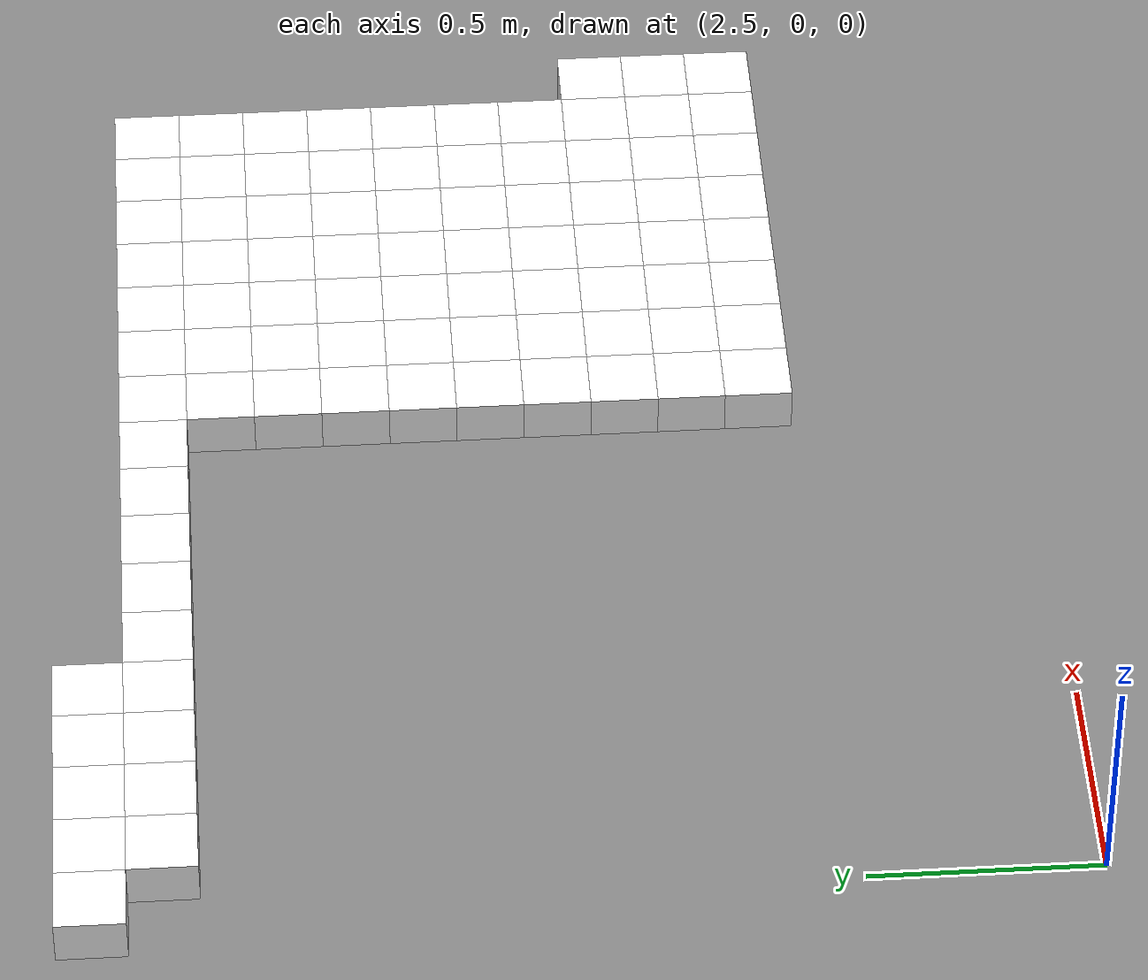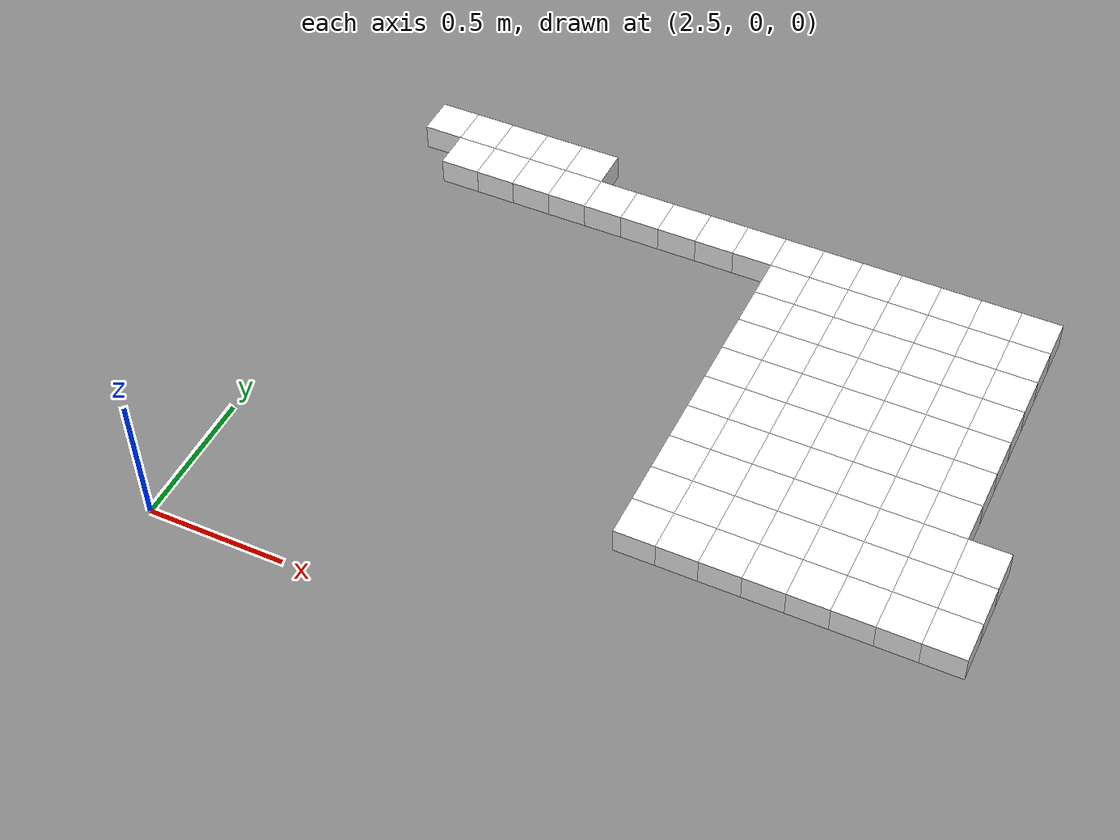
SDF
<sdf version="1.7">
 <world name="default">
  <include><uri>model://sun</uri></include>
  <model name="static_environment">
   <static>true</static>
   <link name="region_411">
    <pose>2.6500000000000012 1.9499999999999997 0.0 0.0 0.0 0.0</pose>
    <collision name="region_411_collision">
     <geometry><box><size>0.15 0.15 0.1</size></box></geometry>
     <surface><friction><ode><mu>1.0</mu><mu2>1.0</mu2></ode></friction></surface>
    </collision>
    <visual name="region_411_visual">
     <geometry><box><size>0.15 0.15 0.1</size></box></geometry>
     <material><ambient>1.0 1.0 1.0 1.0</ambient><diffuse>1.0 1.0 1.0 1.0</diffuse></material>
    </visual>
   </link>
   <link name="region_412">
    <pose>2.8000000000000016 1.9499999999999997 0.0 0.0 0.0 0.0</pose>
    <collision name="region_412_collision">
     <geometry><box><size>0.15 0.15 0.1</size></box></geometry>
     <surface><friction><ode><mu>1.0</mu><mu2>1.0</mu2></ode></friction></surface>
    </collision>
    <visual name="region_412_visual">
     <geometry><box><size>0.15 0.15 0.1</size></box></geometry>
     <material><ambient>1.0 1.0 1.0 1.0</ambient><diffuse>1.0 1.0 1.0 1.0</diffuse></material>
    </visual>
   </link>
   <link name="region_413">
    <pose>2.950000000000002 1.9499999999999997 0.0 0.0 0.0 0.0</pose>
    <collision name="region_413_collision">
     <geometry><box><size>0.15 0.15 0.1</size></box></geometry>
     <surface><friction><ode><mu>1.0</mu><mu2>1.0</mu2></ode></friction></surface>
    </collision>
    <visual name="region_413_visual">
     <geometry><box><size>0.15 0.15 0.1</size></box></geometry>
     <material><ambient>1.0 1.0 1.0 1.0</ambient><diffuse>1.0 1.0 1.0 1.0</diffuse></material>
    </visual>
   </link>
   <link name="region_414">
    <pose>3.1000000000000023 1.9499999999999997 0.0 0.0 0.0 0.0</pose>
    <collision name="region_414_collision">
     <geometry><box><size>0.15 0.15 0.1</size></box></geometry>
     <surface><friction><ode><mu>1.0</mu><mu2>1.0</mu2></ode></friction></surface>
    </collision>
    <visual name="region_414_visual">
     <geometry><box><size>0.15 0.15 0.1</size></box></geometry>
     <material><ambient>1.0 1.0 1.0 1.0</ambient><diffuse>1.0 1.0 1.0 1.0</diffuse></material>
    </visual>
   </link>
   <link name="region_415">
    <pose>3.2500000000000027 1.9499999999999997 0.0 0.0 0.0 0.0</pose>
    <collision name="region_415_collision">
     <geometry><box><size>0.15 0.15 0.1</size></box></geometry>
     <surface><friction><ode><mu>1.0</mu><mu2>1.0</mu2></ode></friction></surface>
    </collision>
    <visual name="region_415_visual">
     <geometry><box><size>0.15 0.15 0.1</size></box></geometry>
     <material><ambient>1.0 1.0 1.0 1.0</ambient><diffuse>1.0 1.0 1.0 1.0</diffuse></material>
    </visual>
   </link>
   <link name="region_416">
    <pose>3.400000000000003 1.9499999999999997 0.0 0.0 0.0 0.0</pose>
    <collision name="region_416_collision">
     <geometry><box><size>0.15 0.15 0.1</size></box></geometry>
     <surface><friction><ode><mu>1.0</mu><mu2>1.0</mu2></ode></friction></surface>
    </collision>
    <visual name="region_416_visual">
     <geometry><box><size>0.15 0.15 0.1</size></box></geometry>
     <material><ambient>1.0 1.0 1.0 1.0</ambient><diffuse>1.0 1.0 1.0 1.0</diffuse></material>
    </visual>
   </link>
   <link name="region_417">
    <pose>3.5500000000000034 1.9499999999999997 0.0 0.0 0.0 0.0</pose>
    <collision name="region_417_collision">
     <geometry><box><size>0.15 0.15 0.1</size></box></geometry>
     <surface><friction><ode><mu>1.0</mu><mu2>1.0</mu2></ode></friction></surface>
    </collision>
    <visual name="region_417_visual">
     <geometry><box><size>0.15 0.15 0.1</size></box></geometry>
     <material><ambient>1.0 1.0 1.0 1.0</ambient><diffuse>1.0 1.0 1.0 1.0</diffuse></material>
    </visual>
   </link>
   <link name="region_418">
    <pose>3.7000000000000037 1.9499999999999997 0.0 0.0 0.0 0.0</pose>
    <collision name="region_418_collision">
     <geometry><box><size>0.15 0.15 0.1</size></box></geometry>
     <surface><friction><ode><mu>1.0</mu><mu2>1.0</mu2></ode></friction></surface>
    </collision>
    <visual name="region_418_visual">
     <geometry><box><size>0.15 0.15 0.1</size></box></geometry>
     <material><ambient>1.0 1.0 1.0 1.0</ambient><diffuse>1.0 1.0 1.0 1.0</diffuse></material>
    </visual>
   </link>
   <link name="region_419">
    <pose>3.850000000000004 1.9499999999999997 0.0 0.0 0.0 0.0</pose>
    <collision name="region_419_collision">
     <geometry><box><size>0.15 0.15 0.1</size></box></geometry>
     <surface><friction><ode><mu>1.0</mu><mu2>1.0</mu2></ode></friction></surface>
    </collision>
    <visual name="region_419_visual">
     <geometry><box><size>0.15 0.15 0.1</size></box></geometry>
     <material><ambient>1.0 1.0 1.0 1.0</ambient><diffuse>1.0 1.0 1.0 1.0</diffuse></material>
    </visual>
   </link>
   <link name="region_430">
    <pose>2.500000000000001 2.0999999999999996 0.0 0.0 0.0 0.0</pose>
    <collision name="region_430_collision">
     <geometry><box><size>0.15 0.15 0.1</size></box></geometry>
     <surface><friction><ode><mu>1.0</mu><mu2>1.0</mu2></ode></friction></surface>
    </collision>
    <visual name="region_430_visual">
     <geometry><box><size>0.15 0.15 0.1</size></box></geometry>
     <material><ambient>1.0 1.0 1.0 1.0</ambient><diffuse>1.0 1.0 1.0 1.0</diffuse></material>
    </visual>
   </link>
   <link name="region_431">
    <pose>2.6500000000000012 2.0999999999999996 0.0 0.0 0.0 0.0</pose>
    <collision name="region_431_collision">
     <geometry><box><size>0.15 0.15 0.1</size></box></geometry>
     <surface><friction><ode><mu>1.0</mu><mu2>1.0</mu2></ode></friction></surface>
    </collision>
    <visual name="region_431_visual">
     <geometry><box><size>0.15 0.15 0.1</size></box></geometry>
     <material><ambient>1.0 1.0 1.0 1.0</ambient><diffuse>1.0 1.0 1.0 1.0</diffuse></material>
    </visual>
   </link>
   <link name="region_432">
    <pose>2.8000000000000016 2.0999999999999996 0.0 0.0 0.0 0.0</pose>
    <collision name="region_432_collision">
     <geometry><box><size>0.15 0.15 0.1</size></box></geometry>
     <surface><friction><ode><mu>1.0</mu><mu2>1.0</mu2></ode></friction></surface>
    </collision>
    <visual name="region_432_visual">
     <geometry><box><size>0.15 0.15 0.1</size></box></geometry>
     <material><ambient>1.0 1.0 1.0 1.0</ambient><diffuse>1.0 1.0 1.0 1.0</diffuse></material>
    </visual>
   </link>
   <link name="region_433">
    <pose>2.950000000000002 2.0999999999999996 0.0 0.0 0.0 0.0</pose>
    <collision name="region_433_collision">
     <geometry><box><size>0.15 0.15 0.1</size></box></geometry>
     <surface><friction><ode><mu>1.0</mu><mu2>1.0</mu2></ode></friction></surface>
    </collision>
    <visual name="region_433_visual">
     <geometry><box><size>0.15 0.15 0.1</size></box></geometry>
     <material><ambient>1.0 1.0 1.0 1.0</ambient><diffuse>1.0 1.0 1.0 1.0</diffuse></material>
    </visual>
   </link>
   <link name="region_434">
    <pose>3.1000000000000023 2.0999999999999996 0.0 0.0 0.0 0.0</pose>
    <collision name="region_434_collision">
     <geometry><box><size>0.15 0.15 0.1</size></box></geometry>
     <surface><friction><ode><mu>1.0</mu><mu2>1.0</mu2></ode></friction></surface>
    </collision>
    <visual name="region_434_visual">
     <geometry><box><size>0.15 0.15 0.1</size></box></geometry>
     <material><ambient>1.0 1.0 1.0 1.0</ambient><diffuse>1.0 1.0 1.0 1.0</diffuse></material>
    </visual>
   </link>
   <link name="region_460">
    <pose>4.0 0.6 0.0 0.0 0.0 0.0</pose>
    <collision name="region_460_collision">
     <geometry><box><size>0.15 0.15 0.1</size></box></geometry>
     <surface><friction><ode><mu>1.0</mu><mu2>1.0</mu2></ode></friction></surface>
    </collision>
    <visual name="region_460_visual">
     <geometry><box><size>0.15 0.15 0.1</size></box></geometry>
     <material><ambient>1.0 1.0 1.0 1.0</ambient><diffuse>1.0 1.0 1.0 1.0</diffuse></material>
    </visual>
   </link>
   <link name="region_461">
    <pose>4.15 0.6 0.0 0.0 0.0 0.0</pose>
    <collision name="region_461_collision">
     <geometry><box><size>0.15 0.15 0.1</size></box></geometry>
     <surface><friction><ode><mu>1.0</mu><mu2>1.0</mu2></ode></friction></surface>
    </collision>
    <visual name="region_461_visual">
     <geometry><box><size>0.15 0.15 0.1</size></box></geometry>
     <material><ambient>1.0 1.0 1.0 1.0</ambient><diffuse>1.0 1.0 1.0 1.0</diffuse></material>
    </visual>
   </link>
   <link name="region_462">
    <pose>4.300000000000001 0.6 0.0 0.0 0.0 0.0</pose>
    <collision name="region_462_collision">
     <geometry><box><size>0.15 0.15 0.1</size></box></geometry>
     <surface><friction><ode><mu>1.0</mu><mu2>1.0</mu2></ode></friction></surface>
    </collision>
    <visual name="region_462_visual">
     <geometry><box><size>0.15 0.15 0.1</size></box></geometry>
     <material><ambient>1.0 1.0 1.0 1.0</ambient><diffuse>1.0 1.0 1.0 1.0</diffuse></material>
    </visual>
   </link>
   <link name="region_463">
    <pose>4.450000000000001 0.6 0.0 0.0 0.0 0.0</pose>
    <collision name="region_463_collision">
     <geometry><box><size>0.15 0.15 0.1</size></box></geometry>
     <surface><friction><ode><mu>1.0</mu><mu2>1.0</mu2></ode></friction></surface>
    </collision>
    <visual name="region_463_visual">
     <geometry><box><size>0.15 0.15 0.1</size></box></geometry>
     <material><ambient>1.0 1.0 1.0 1.0</ambient><diffuse>1.0 1.0 1.0 1.0</diffuse></material>
    </visual>
   </link>
   <link name="region_464">
    <pose>4.600000000000001 0.6 0.0 0.0 0.0 0.0</pose>
    <collision name="region_464_collision">
     <geometry><box><size>0.15 0.15 0.1</size></box></geometry>
     <surface><friction><ode><mu>1.0</mu><mu2>1.0</mu2></ode></friction></surface>
    </collision>
    <visual name="region_464_visual">
     <geometry><box><size>0.15 0.15 0.1</size></box></geometry>
     <material><ambient>1.0 1.0 1.0 1.0</ambient><diffuse>1.0 1.0 1.0 1.0</diffuse></material>
    </visual>
   </link>
   <link name="region_465">
    <pose>4.750000000000002 0.6 0.0 0.0 0.0 0.0</pose>
    <collision name="region_465_collision">
     <geometry><box><size>0.15 0.15 0.1</size></box></geometry>
     <surface><friction><ode><mu>1.0</mu><mu2>1.0</mu2></ode></friction></surface>
    </collision>
    <visual name="region_465_visual">
     <geometry><box><size>0.15 0.15 0.1</size></box></geometry>
     <material><ambient>1.0 1.0 1.0 1.0</ambient><diffuse>1.0 1.0 1.0 1.0</diffuse></material>
    </visual>
   </link>
   <link name="region_466">
    <pose>4.900000000000002 0.6 0.0 0.0 0.0 0.0</pose>
    <collision name="region_466_collision">
     <geometry><box><size>0.15 0.15 0.1</size></box></geometry>
     <surface><friction><ode><mu>1.0</mu><mu2>1.0</mu2></ode></friction></surface>
    </collision>
    <visual name="region_466_visual">
     <geometry><box><size>0.15 0.15 0.1</size></box></geometry>
     <material><ambient>1.0 1.0 1.0 1.0</ambient><diffuse>1.0 1.0 1.0 1.0</diffuse></material>
    </visual>
   </link>
   <link name="region_467">
    <pose>5.0500000000000025 0.6 0.0 0.0 0.0 0.0</pose>
    <collision name="region_467_collision">
     <geometry><box><size>0.15 0.15 0.1</size></box></geometry>
     <surface><friction><ode><mu>1.0</mu><mu2>1.0</mu2></ode></friction></surface>
    </collision>
    <visual name="region_467_visual">
     <geometry><box><size>0.15 0.15 0.1</size></box></geometry>
     <material><ambient>1.0 1.0 1.0 1.0</ambient><diffuse>1.0 1.0 1.0 1.0</diffuse></material>
    </visual>
   </link>
   <link name="region_480">
    <pose>4.0 0.75 0.0 0.0 0.0 0.0</pose>
    <collision name="region_480_collision">
     <geometry><box><size>0.15 0.15 0.1</size></box></geometry>
     <surface><friction><ode><mu>1.0</mu><mu2>1.0</mu2></ode></friction></surface>
    </collision>
    <visual name="region_480_visual">
     <geometry><box><size>0.15 0.15 0.1</size></box></geometry>
     <material><ambient>1.0 1.0 1.0 1.0</ambient><diffuse>1.0 1.0 1.0 1.0</diffuse></material>
    </visual>
   </link>
   <link name="region_481">
    <pose>4.15 0.75 0.0 0.0 0.0 0.0</pose>
    <collision name="region_481_collision">
     <geometry><box><size>0.15 0.15 0.1</size></box></geometry>
     <surface><friction><ode><mu>1.0</mu><mu2>1.0</mu2></ode></friction></surface>
    </collision>
    <visual name="region_481_visual">
     <geometry><box><size>0.15 0.15 0.1</size></box></geometry>
     <material><ambient>1.0 1.0 1.0 1.0</ambient><diffuse>1.0 1.0 1.0 1.0</diffuse></material>
    </visual>
   </link>
   <link name="region_482">
    <pose>4.300000000000001 0.75 0.0 0.0 0.0 0.0</pose>
    <collision name="region_482_collision">
     <geometry><box><size>0.15 0.15 0.1</size></box></geometry>
     <surface><friction><ode><mu>1.0</mu><mu2>1.0</mu2></ode></friction></surface>
    </collision>
    <visual name="region_482_visual">
     <geometry><box><size>0.15 0.15 0.1</size></box></geometry>
     <material><ambient>1.0 1.0 1.0 1.0</ambient><diffuse>1.0 1.0 1.0 1.0</diffuse></material>
    </visual>
   </link>
   <link name="region_483">
    <pose>4.450000000000001 0.75 0.0 0.0 0.0 0.0</pose>
    <collision name="region_483_collision">
     <geometry><box><size>0.15 0.15 0.1</size></box></geometry>
     <surface><friction><ode><mu>1.0</mu><mu2>1.0</mu2></ode></friction></surface>
    </collision>
    <visual name="region_483_visual">
     <geometry><box><size>0.15 0.15 0.1</size></box></geometry>
     <material><ambient>1.0 1.0 1.0 1.0</ambient><diffuse>1.0 1.0 1.0 1.0</diffuse></material>
    </visual>
   </link>
   <link name="region_484">
    <pose>4.600000000000001 0.75 0.0 0.0 0.0 0.0</pose>
    <collision name="region_484_collision">
     <geometry><box><size>0.15 0.15 0.1</size></box></geometry>
     <surface><friction><ode><mu>1.0</mu><mu2>1.0</mu2></ode></friction></surface>
    </collision>
    <visual name="region_484_visual">
     <geometry><box><size>0.15 0.15 0.1</size></box></geometry>
     <material><ambient>1.0 1.0 1.0 1.0</ambient><diffuse>1.0 1.0 1.0 1.0</diffuse></material>
    </visual>
   </link>
   <link name="region_485">
    <pose>4.750000000000002 0.75 0.0 0.0 0.0 0.0</pose>
    <collision name="region_485_collision">
     <geometry><box><size>0.15 0.15 0.1</size></box></geometry>
     <surface><friction><ode><mu>1.0</mu><mu2>1.0</mu2></ode></friction></surface>
    </collision>
    <visual name="region_485_visual">
     <geometry><box><size>0.15 0.15 0.1</size></box></geometry>
     <material><ambient>1.0 1.0 1.0 1.0</ambient><diffuse>1.0 1.0 1.0 1.0</diffuse></material>
    </visual>
   </link>
   <link name="region_486">
    <pose>4.900000000000002 0.75 0.0 0.0 0.0 0.0</pose>
    <collision name="region_486_collision">
     <geometry><box><size>0.15 0.15 0.1</size></box></geometry>
     <surface><friction><ode><mu>1.0</mu><mu2>1.0</mu2></ode></friction></surface>
    </collision>
    <visual name="region_486_visual">
     <geometry><box><size>0.15 0.15 0.1</size></box></geometry>
     <material><ambient>1.0 1.0 1.0 1.0</ambient><diffuse>1.0 1.0 1.0 1.0</diffuse></material>
    </visual>
   </link>
   <link name="region_487">
    <pose>5.0500000000000025 0.75 0.0 0.0 0.0 0.0</pose>
    <collision name="region_487_collision">
     <geometry><box><size>0.15 0.15 0.1</size></box></geometry>
     <surface><friction><ode><mu>1.0</mu><mu2>1.0</mu2></ode></friction></surface>
    </collision>
    <visual name="region_487_visual">
     <geometry><box><size>0.15 0.15 0.1</size></box></geometry>
     <material><ambient>1.0 1.0 1.0 1.0</ambient><diffuse>1.0 1.0 1.0 1.0</diffuse></material>
    </visual>
   </link>
   <link name="region_500">
    <pose>4.0 0.8999999999999999 0.0 0.0 0.0 0.0</pose>
    <collision name="region_500_collision">
     <geometry><box><size>0.15 0.15 0.1</size></box></geometry>
     <surface><friction><ode><mu>1.0</mu><mu2>1.0</mu2></ode></friction></surface>
    </collision>
    <visual name="region_500_visual">
     <geometry><box><size>0.15 0.15 0.1</size></box></geometry>
     <material><ambient>1.0 1.0 1.0 1.0</ambient><diffuse>1.0 1.0 1.0 1.0</diffuse></material>
    </visual>
   </link>
   <link name="region_501">
    <pose>4.15 0.8999999999999999 0.0 0.0 0.0 0.0</pose>
    <collision name="region_501_collision">
     <geometry><box><size>0.15 0.15 0.1</size></box></geometry>
     <surface><friction><ode><mu>1.0</mu><mu2>1.0</mu2></ode></friction></surface>
    </collision>
    <visual name="region_501_visual">
     <geometry><box><size>0.15 0.15 0.1</size></box></geometry>
     <material><ambient>1.0 1.0 1.0 1.0</ambient><diffuse>1.0 1.0 1.0 1.0</diffuse></material>
    </visual>
   </link>
   <link name="region_502">
    <pose>4.300000000000001 0.8999999999999999 0.0 0.0 0.0 0.0</pose>
    <collision name="region_502_collision">
     <geometry><box><size>0.15 0.15 0.1</size></box></geometry>
     <surface><friction><ode><mu>1.0</mu><mu2>1.0</mu2></ode></friction></surface>
    </collision>
    <visual name="region_502_visual">
     <geometry><box><size>0.15 0.15 0.1</size></box></geometry>
     <material><ambient>1.0 1.0 1.0 1.0</ambient><diffuse>1.0 1.0 1.0 1.0</diffuse></material>
    </visual>
   </link>
   <link name="region_503">
    <pose>4.450000000000001 0.8999999999999999 0.0 0.0 0.0 0.0</pose>
    <collision name="region_503_collision">
     <geometry><box><size>0.15 0.15 0.1</size></box></geometry>
     <surface><friction><ode><mu>1.0</mu><mu2>1.0</mu2></ode></friction></surface>
    </collision>
    <visual name="region_503_visual">
     <geometry><box><size>0.15 0.15 0.1</size></box></geometry>
     <material><ambient>1.0 1.0 1.0 1.0</ambient><diffuse>1.0 1.0 1.0 1.0</diffuse></material>
    </visual>
   </link>
   <link name="region_504">
    <pose>4.600000000000001 0.8999999999999999 0.0 0.0 0.0 0.0</pose>
    <collision name="region_504_collision">
     <geometry><box><size>0.15 0.15 0.1</size></box></geometry>
     <surface><friction><ode><mu>1.0</mu><mu2>1.0</mu2></ode></friction></surface>
    </collision>
    <visual name="region_504_visual">
     <geometry><box><size>0.15 0.15 0.1</size></box></geometry>
     <material><ambient>1.0 1.0 1.0 1.0</ambient><diffuse>1.0 1.0 1.0 1.0</diffuse></material>
    </visual>
   </link>
   <link name="region_505">
    <pose>4.750000000000002 0.8999999999999999 0.0 0.0 0.0 0.0</pose>
    <collision name="region_505_collision">
     <geometry><box><size>0.15 0.15 0.1</size></box></geometry>
     <surface><friction><ode><mu>1.0</mu><mu2>1.0</mu2></ode></friction></surface>
    </collision>
    <visual name="region_505_visual">
     <geometry><box><size>0.15 0.15 0.1</size></box></geometry>
     <material><ambient>1.0 1.0 1.0 1.0</ambient><diffuse>1.0 1.0 1.0 1.0</diffuse></material>
    </visual>
   </link>
   <link name="region_506">
    <pose>4.900000000000002 0.8999999999999999 0.0 0.0 0.0 0.0</pose>
    <collision name="region_506_collision">
     <geometry><box><size>0.15 0.15 0.1</size></box></geometry>
     <surface><friction><ode><mu>1.0</mu><mu2>1.0</mu2></ode></friction></surface>
    </collision>
    <visual name="region_506_visual">
     <geometry><box><size>0.15 0.15 0.1</size></box></geometry>
     <material><ambient>1.0 1.0 1.0 1.0</ambient><diffuse>1.0 1.0 1.0 1.0</diffuse></material>
    </visual>
   </link>
   <link name="region_507">
    <pose>5.0500000000000025 0.8999999999999999 0.0 0.0 0.0 0.0</pose>
    <collision name="region_507_collision">
     <geometry><box><size>0.15 0.15 0.1</size></box></geometry>
     <surface><friction><ode><mu>1.0</mu><mu2>1.0</mu2></ode></friction></surface>
    </collision>
    <visual name="region_507_visual">
     <geometry><box><size>0.15 0.15 0.1</size></box></geometry>
     <material><ambient>1.0 1.0 1.0 1.0</ambient><diffuse>1.0 1.0 1.0 1.0</diffuse></material>
    </visual>
   </link>
   <link name="region_520">
    <pose>4.0 1.0499999999999998 0.0 0.0 0.0 0.0</pose>
    <collision name="region_520_collision">
     <geometry><box><size>0.15 0.15 0.1</size></box></geometry>
     <surface><friction><ode><mu>1.0</mu><mu2>1.0</mu2></ode></friction></surface>
    </collision>
    <visual name="region_520_visual">
     <geometry><box><size>0.15 0.15 0.1</size></box></geometry>
     <material><ambient>1.0 1.0 1.0 1.0</ambient><diffuse>1.0 1.0 1.0 1.0</diffuse></material>
    </visual>
   </link>
   <link name="region_521">
    <pose>4.15 1.0499999999999998 0.0 0.0 0.0 0.0</pose>
    <collision name="region_521_collision">
     <geometry><box><size>0.15 0.15 0.1</size></box></geometry>
     <surface><friction><ode><mu>1.0</mu><mu2>1.0</mu2></ode></friction></surface>
    </collision>
    <visual name="region_521_visual">
     <geometry><box><size>0.15 0.15 0.1</size></box></geometry>
     <material><ambient>1.0 1.0 1.0 1.0</ambient><diffuse>1.0 1.0 1.0 1.0</diffuse></material>
    </visual>
   </link>
   <link name="region_522">
    <pose>4.300000000000001 1.0499999999999998 0.0 0.0 0.0 0.0</pose>
    <collision name="region_522_collision">
     <geometry><box><size>0.15 0.15 0.1</size></box></geometry>
     <surface><friction><ode><mu>1.0</mu><mu2>1.0</mu2></ode></friction></surface>
    </collision>
    <visual name="region_522_visual">
     <geometry><box><size>0.15 0.15 0.1</size></box></geometry>
     <material><ambient>1.0 1.0 1.0 1.0</ambient><diffuse>1.0 1.0 1.0 1.0</diffuse></material>
    </visual>
   </link>
   <link name="region_523">
    <pose>4.450000000000001 1.0499999999999998 0.0 0.0 0.0 0.0</pose>
    <collision name="region_523_collision">
     <geometry><box><size>0.15 0.15 0.1</size></box></geometry>
     <surface><friction><ode><mu>1.0</mu><mu2>1.0</mu2></ode></friction></surface>
    </collision>
    <visual name="region_523_visual">
     <geometry><box><size>0.15 0.15 0.1</size></box></geometry>
     <material><ambient>1.0 1.0 1.0 1.0</ambient><diffuse>1.0 1.0 1.0 1.0</diffuse></material>
    </visual>
   </link>
   <link name="region_524">
    <pose>4.600000000000001 1.0499999999999998 0.0 0.0 0.0 0.0</pose>
    <collision name="region_524_collision">
     <geometry><box><size>0.15 0.15 0.1</size></box></geometry>
     <surface><friction><ode><mu>1.0</mu><mu2>1.0</mu2></ode></friction></surface>
    </collision>
    <visual name="region_524_visual">
     <geometry><box><size>0.15 0.15 0.1</size></box></geometry>
     <material><ambient>1.0 1.0 1.0 1.0</ambient><diffuse>1.0 1.0 1.0 1.0</diffuse></material>
    </visual>
   </link>
   <link name="region_525">
    <pose>4.750000000000002 1.0499999999999998 0.0 0.0 0.0 0.0</pose>
    <collision name="region_525_collision">
     <geometry><box><size>0.15 0.15 0.1</size></box></geometry>
     <surface><friction><ode><mu>1.0</mu><mu2>1.0</mu2></ode></friction></surface>
    </collision>
    <visual name="region_525_visual">
     <geometry><box><size>0.15 0.15 0.1</size></box></geometry>
     <material><ambient>1.0 1.0 1.0 1.0</ambient><diffuse>1.0 1.0 1.0 1.0</diffuse></material>
    </visual>
   </link>
   <link name="region_526">
    <pose>4.900000000000002 1.0499999999999998 0.0 0.0 0.0 0.0</pose>
    <collision name="region_526_collision">
     <geometry><box><size>0.15 0.15 0.1</size></box></geometry>
     <surface><friction><ode><mu>1.0</mu><mu2>1.0</mu2></ode></friction></surface>
    </collision>
    <visual name="region_526_visual">
     <geometry><box><size>0.15 0.15 0.1</size></box></geometry>
     <material><ambient>1.0 1.0 1.0 1.0</ambient><diffuse>1.0 1.0 1.0 1.0</diffuse></material>
    </visual>
   </link>
   <link name="region_540">
    <pose>4.0 1.2 0.0 0.0 0.0 0.0</pose>
    <collision name="region_540_collision">
     <geometry><box><size>0.15 0.15 0.1</size></box></geometry>
     <surface><friction><ode><mu>1.0</mu><mu2>1.0</mu2></ode></friction></surface>
    </collision>
    <visual name="region_540_visual">
     <geometry><box><size>0.15 0.15 0.1</size></box></geometry>
     <material><ambient>1.0 1.0 1.0 1.0</ambient><diffuse>1.0 1.0 1.0 1.0</diffuse></material>
    </visual>
   </link>
   <link name="region_541">
    <pose>4.15 1.2 0.0 0.0 0.0 0.0</pose>
    <collision name="region_541_collision">
     <geometry><box><size>0.15 0.15 0.1</size></box></geometry>
     <surface><friction><ode><mu>1.0</mu><mu2>1.0</mu2></ode></friction></surface>
    </collision>
    <visual name="region_541_visual">
     <geometry><box><size>0.15 0.15 0.1</size></box></geometry>
     <material><ambient>1.0 1.0 1.0 1.0</ambient><diffuse>1.0 1.0 1.0 1.0</diffuse></material>
    </visual>
   </link>
   <link name="region_542">
    <pose>4.300000000000001 1.2 0.0 0.0 0.0 0.0</pose>
    <collision name="region_542_collision">
     <geometry><box><size>0.15 0.15 0.1</size></box></geometry>
     <surface><friction><ode><mu>1.0</mu><mu2>1.0</mu2></ode></friction></surface>
    </collision>
    <visual name="region_542_visual">
     <geometry><box><size>0.15 0.15 0.1</size></box></geometry>
     <material><ambient>1.0 1.0 1.0 1.0</ambient><diffuse>1.0 1.0 1.0 1.0</diffuse></material>
    </visual>
   </link>
   <link name="region_543">
    <pose>4.450000000000001 1.2 0.0 0.0 0.0 0.0</pose>
    <collision name="region_543_collision">
     <geometry><box><size>0.15 0.15 0.1</size></box></geometry>
     <surface><friction><ode><mu>1.0</mu><mu2>1.0</mu2></ode></friction></surface>
    </collision>
    <visual name="region_543_visual">
     <geometry><box><size>0.15 0.15 0.1</size></box></geometry>
     <material><ambient>1.0 1.0 1.0 1.0</ambient><diffuse>1.0 1.0 1.0 1.0</diffuse></material>
    </visual>
   </link>
   <link name="region_544">
    <pose>4.600000000000001 1.2 0.0 0.0 0.0 0.0</pose>
    <collision name="region_544_collision">
     <geometry><box><size>0.15 0.15 0.1</size></box></geometry>
     <surface><friction><ode><mu>1.0</mu><mu2>1.0</mu2></ode></friction></surface>
    </collision>
    <visual name="region_544_visual">
     <geometry><box><size>0.15 0.15 0.1</size></box></geometry>
     <material><ambient>1.0 1.0 1.0 1.0</ambient><diffuse>1.0 1.0 1.0 1.0</diffuse></material>
    </visual>
   </link>
   <link name="region_545">
    <pose>4.750000000000002 1.2 0.0 0.0 0.0 0.0</pose>
    <collision name="region_545_collision">
     <geometry><box><size>0.15 0.15 0.1</size></box></geometry>
     <surface><friction><ode><mu>1.0</mu><mu2>1.0</mu2></ode></friction></surface>
    </collision>
    <visual name="region_545_visual">
     <geometry><box><size>0.15 0.15 0.1</size></box></geometry>
     <material><ambient>1.0 1.0 1.0 1.0</ambient><diffuse>1.0 1.0 1.0 1.0</diffuse></material>
    </visual>
   </link>
   <link name="region_546">
    <pose>4.900000000000002 1.2 0.0 0.0 0.0 0.0</pose>
    <collision name="region_546_collision">
     <geometry><box><size>0.15 0.15 0.1</size></box></geometry>
     <surface><friction><ode><mu>1.0</mu><mu2>1.0</mu2></ode></friction></surface>
    </collision>
    <visual name="region_546_visual">
     <geometry><box><size>0.15 0.15 0.1</size></box></geometry>
     <material><ambient>1.0 1.0 1.0 1.0</ambient><diffuse>1.0 1.0 1.0 1.0</diffuse></material>
    </visual>
   </link>
   <link name="region_560">
    <pose>4.0 1.35 0.0 0.0 0.0 0.0</pose>
    <collision name="region_560_collision">
     <geometry><box><size>0.15 0.15 0.1</size></box></geometry>
     <surface><friction><ode><mu>1.0</mu><mu2>1.0</mu2></ode></friction></surface>
    </collision>
    <visual name="region_560_visual">
     <geometry><box><size>0.15 0.15 0.1</size></box></geometry>
     <material><ambient>1.0 1.0 1.0 1.0</ambient><diffuse>1.0 1.0 1.0 1.0</diffuse></material>
    </visual>
   </link>
   <link name="region_561">
    <pose>4.15 1.35 0.0 0.0 0.0 0.0</pose>
    <collision name="region_561_collision">
     <geometry><box><size>0.15 0.15 0.1</size></box></geometry>
     <surface><friction><ode><mu>1.0</mu><mu2>1.0</mu2></ode></friction></surface>
    </collision>
    <visual name="region_561_visual">
     <geometry><box><size>0.15 0.15 0.1</size></box></geometry>
     <material><ambient>1.0 1.0 1.0 1.0</ambient><diffuse>1.0 1.0 1.0 1.0</diffuse></material>
    </visual>
   </link>
   <link name="region_562">
    <pose>4.300000000000001 1.35 0.0 0.0 0.0 0.0</pose>
    <collision name="region_562_collision">
     <geometry><box><size>0.15 0.15 0.1</size></box></geometry>
     <surface><friction><ode><mu>1.0</mu><mu2>1.0</mu2></ode></friction></surface>
    </collision>
    <visual name="region_562_visual">
     <geometry><box><size>0.15 0.15 0.1</size></box></geometry>
     <material><ambient>1.0 1.0 1.0 1.0</ambient><diffuse>1.0 1.0 1.0 1.0</diffuse></material>
    </visual>
   </link>
   <link name="region_563">
    <pose>4.450000000000001 1.35 0.0 0.0 0.0 0.0</pose>
    <collision name="region_563_collision">
     <geometry><box><size>0.15 0.15 0.1</size></box></geometry>
     <surface><friction><ode><mu>1.0</mu><mu2>1.0</mu2></ode></friction></surface>
    </collision>
    <visual name="region_563_visual">
     <geometry><box><size>0.15 0.15 0.1</size></box></geometry>
     <material><ambient>1.0 1.0 1.0 1.0</ambient><diffuse>1.0 1.0 1.0 1.0</diffuse></material>
    </visual>
   </link>
   <link name="region_564">
    <pose>4.600000000000001 1.35 0.0 0.0 0.0 0.0</pose>
    <collision name="region_564_collision">
     <geometry><box><size>0.15 0.15 0.1</size></box></geometry>
     <surface><friction><ode><mu>1.0</mu><mu2>1.0</mu2></ode></friction></surface>
    </collision>
    <visual name="region_564_visual">
     <geometry><box><size>0.15 0.15 0.1</size></box></geometry>
     <material><ambient>1.0 1.0 1.0 1.0</ambient><diffuse>1.0 1.0 1.0 1.0</diffuse></material>
    </visual>
   </link>
   <link name="region_565">
    <pose>4.750000000000002 1.35 0.0 0.0 0.0 0.0</pose>
    <collision name="region_565_collision">
     <geometry><box><size>0.15 0.15 0.1</size></box></geometry>
     <surface><friction><ode><mu>1.0</mu><mu2>1.0</mu2></ode></friction></surface>
    </collision>
    <visual name="region_565_visual">
     <geometry><box><size>0.15 0.15 0.1</size></box></geometry>
     <material><ambient>1.0 1.0 1.0 1.0</ambient><diffuse>1.0 1.0 1.0 1.0</diffuse></material>
    </visual>
   </link>
   <link name="region_566">
    <pose>4.900000000000002 1.35 0.0 0.0 0.0 0.0</pose>
    <collision name="region_566_collision">
     <geometry><box><size>0.15 0.15 0.1</size></box></geometry>
     <surface><friction><ode><mu>1.0</mu><mu2>1.0</mu2></ode></friction></surface>
    </collision>
    <visual name="region_566_visual">
     <geometry><box><size>0.15 0.15 0.1</size></box></geometry>
     <material><ambient>1.0 1.0 1.0 1.0</ambient><diffuse>1.0 1.0 1.0 1.0</diffuse></material>
    </visual>
   </link>
   <link name="region_580">
    <pose>4.0 1.5 0.0 0.0 0.0 0.0</pose>
    <collision name="region_580_collision">
     <geometry><box><size>0.15 0.15 0.1</size></box></geometry>
     <surface><friction><ode><mu>1.0</mu><mu2>1.0</mu2></ode></friction></surface>
    </collision>
    <visual name="region_580_visual">
     <geometry><box><size>0.15 0.15 0.1</size></box></geometry>
     <material><ambient>1.0 1.0 1.0 1.0</ambient><diffuse>1.0 1.0 1.0 1.0</diffuse></material>
    </visual>
   </link>
   <link name="region_581">
    <pose>4.15 1.5 0.0 0.0 0.0 0.0</pose>
    <collision name="region_581_collision">
     <geometry><box><size>0.15 0.15 0.1</size></box></geometry>
     <surface><friction><ode><mu>1.0</mu><mu2>1.0</mu2></ode></friction></surface>
    </collision>
    <visual name="region_581_visual">
     <geometry><box><size>0.15 0.15 0.1</size></box></geometry>
     <material><ambient>1.0 1.0 1.0 1.0</ambient><diffuse>1.0 1.0 1.0 1.0</diffuse></material>
    </visual>
   </link>
   <link name="region_582">
    <pose>4.300000000000001 1.5 0.0 0.0 0.0 0.0</pose>
    <collision name="region_582_collision">
     <geometry><box><size>0.15 0.15 0.1</size></box></geometry>
     <surface><friction><ode><mu>1.0</mu><mu2>1.0</mu2></ode></friction></surface>
    </collision>
    <visual name="region_582_visual">
     <geometry><box><size>0.15 0.15 0.1</size></box></geometry>
     <material><ambient>1.0 1.0 1.0 1.0</ambient><diffuse>1.0 1.0 1.0 1.0</diffuse></material>
    </visual>
   </link>
   <link name="region_583">
    <pose>4.450000000000001 1.5 0.0 0.0 0.0 0.0</pose>
    <collision name="region_583_collision">
     <geometry><box><size>0.15 0.15 0.1</size></box></geometry>
     <surface><friction><ode><mu>1.0</mu><mu2>1.0</mu2></ode></friction></surface>
    </collision>
    <visual name="region_583_visual">
     <geometry><box><size>0.15 0.15 0.1</size></box></geometry>
     <material><ambient>1.0 1.0 1.0 1.0</ambient><diffuse>1.0 1.0 1.0 1.0</diffuse></material>
    </visual>
   </link>
   <link name="region_584">
    <pose>4.600000000000001 1.5 0.0 0.0 0.0 0.0</pose>
    <collision name="region_584_collision">
     <geometry><box><size>0.15 0.15 0.1</size></box></geometry>
     <surface><friction><ode><mu>1.0</mu><mu2>1.0</mu2></ode></friction></surface>
    </collision>
    <visual name="region_584_visual">
     <geometry><box><size>0.15 0.15 0.1</size></box></geometry>
     <material><ambient>1.0 1.0 1.0 1.0</ambient><diffuse>1.0 1.0 1.0 1.0</diffuse></material>
    </visual>
   </link>
   <link name="region_585">
    <pose>4.750000000000002 1.5 0.0 0.0 0.0 0.0</pose>
    <collision name="region_585_collision">
     <geometry><box><size>0.15 0.15 0.1</size></box></geometry>
     <surface><friction><ode><mu>1.0</mu><mu2>1.0</mu2></ode></friction></surface>
    </collision>
    <visual name="region_585_visual">
     <geometry><box><size>0.15 0.15 0.1</size></box></geometry>
     <material><ambient>1.0 1.0 1.0 1.0</ambient><diffuse>1.0 1.0 1.0 1.0</diffuse></material>
    </visual>
   </link>
   <link name="region_586">
    <pose>4.900000000000002 1.5 0.0 0.0 0.0 0.0</pose>
    <collision name="region_586_collision">
     <geometry><box><size>0.15 0.15 0.1</size></box></geometry>
     <surface><friction><ode><mu>1.0</mu><mu2>1.0</mu2></ode></friction></surface>
    </collision>
    <visual name="region_586_visual">
     <geometry><box><size>0.15 0.15 0.1</size></box></geometry>
     <material><ambient>1.0 1.0 1.0 1.0</ambient><diffuse>1.0 1.0 1.0 1.0</diffuse></material>
    </visual>
   </link>
   <link name="region_600">
    <pose>4.0 1.65 0.0 0.0 0.0 0.0</pose>
    <collision name="region_600_collision">
     <geometry><box><size>0.15 0.15 0.1</size></box></geometry>
     <surface><friction><ode><mu>1.0</mu><mu2>1.0</mu2></ode></friction></surface>
    </collision>
    <visual name="region_600_visual">
     <geometry><box><size>0.15 0.15 0.1</size></box></geometry>
     <material><ambient>1.0 1.0 1.0 1.0</ambient><diffuse>1.0 1.0 1.0 1.0</diffuse></material>
    </visual>
   </link>
   <link name="region_601">
    <pose>4.15 1.65 0.0 0.0 0.0 0.0</pose>
    <collision name="region_601_collision">
     <geometry><box><size>0.15 0.15 0.1</size></box></geometry>
     <surface><friction><ode><mu>1.0</mu><mu2>1.0</mu2></ode></friction></surface>
    </collision>
    <visual name="region_601_visual">
     <geometry><box><size>0.15 0.15 0.1</size></box></geometry>
     <material><ambient>1.0 1.0 1.0 1.0</ambient><diffuse>1.0 1.0 1.0 1.0</diffuse></material>
    </visual>
   </link>
   <link name="region_602">
    <pose>4.300000000000001 1.65 0.0 0.0 0.0 0.0</pose>
    <collision name="region_602_collision">
     <geometry><box><size>0.15 0.15 0.1</size></box></geometry>
     <surface><friction><ode><mu>1.0</mu><mu2>1.0</mu2></ode></friction></surface>
    </collision>
    <visual name="region_602_visual">
     <geometry><box><size>0.15 0.15 0.1</size></box></geometry>
     <material><ambient>1.0 1.0 1.0 1.0</ambient><diffuse>1.0 1.0 1.0 1.0</diffuse></material>
    </visual>
   </link>
   <link name="region_603">
    <pose>4.450000000000001 1.65 0.0 0.0 0.0 0.0</pose>
    <collision name="region_603_collision">
     <geometry><box><size>0.15 0.15 0.1</size></box></geometry>
     <surface><friction><ode><mu>1.0</mu><mu2>1.0</mu2></ode></friction></surface>
    </collision>
    <visual name="region_603_visual">
     <geometry><box><size>0.15 0.15 0.1</size></box></geometry>
     <material><ambient>1.0 1.0 1.0 1.0</ambient><diffuse>1.0 1.0 1.0 1.0</diffuse></material>
    </visual>
   </link>
   <link name="region_604">
    <pose>4.600000000000001 1.65 0.0 0.0 0.0 0.0</pose>
    <collision name="region_604_collision">
     <geometry><box><size>0.15 0.15 0.1</size></box></geometry>
     <surface><friction><ode><mu>1.0</mu><mu2>1.0</mu2></ode></friction></surface>
    </collision>
    <visual name="region_604_visual">
     <geometry><box><size>0.15 0.15 0.1</size></box></geometry>
     <material><ambient>1.0 1.0 1.0 1.0</ambient><diffuse>1.0 1.0 1.0 1.0</diffuse></material>
    </visual>
   </link>
   <link name="region_605">
    <pose>4.750000000000002 1.65 0.0 0.0 0.0 0.0</pose>
    <collision name="region_605_collision">
     <geometry><box><size>0.15 0.15 0.1</size></box></geometry>
     <surface><friction><ode><mu>1.0</mu><mu2>1.0</mu2></ode></friction></surface>
    </collision>
    <visual name="region_605_visual">
     <geometry><box><size>0.15 0.15 0.1</size></box></geometry>
     <material><ambient>1.0 1.0 1.0 1.0</ambient><diffuse>1.0 1.0 1.0 1.0</diffuse></material>
    </visual>
   </link>
   <link name="region_606">
    <pose>4.900000000000002 1.65 0.0 0.0 0.0 0.0</pose>
    <collision name="region_606_collision">
     <geometry><box><size>0.15 0.15 0.1</size></box></geometry>
     <surface><friction><ode><mu>1.0</mu><mu2>1.0</mu2></ode></friction></surface>
    </collision>
    <visual name="region_606_visual">
     <geometry><box><size>0.15 0.15 0.1</size></box></geometry>
     <material><ambient>1.0 1.0 1.0 1.0</ambient><diffuse>1.0 1.0 1.0 1.0</diffuse></material>
    </visual>
   </link>
   <link name="region_620">
    <pose>4.0 1.7999999999999998 0.0 0.0 0.0 0.0</pose>
    <collision name="region_620_collision">
     <geometry><box><size>0.15 0.15 0.1</size></box></geometry>
     <surface><friction><ode><mu>1.0</mu><mu2>1.0</mu2></ode></friction></surface>
    </collision>
    <visual name="region_620_visual">
     <geometry><box><size>0.15 0.15 0.1</size></box></geometry>
     <material><ambient>1.0 1.0 1.0 1.0</ambient><diffuse>1.0 1.0 1.0 1.0</diffuse></material>
    </visual>
   </link>
   <link name="region_621">
    <pose>4.15 1.7999999999999998 0.0 0.0 0.0 0.0</pose>
    <collision name="region_621_collision">
     <geometry><box><size>0.15 0.15 0.1</size></box></geometry>
     <surface><friction><ode><mu>1.0</mu><mu2>1.0</mu2></ode></friction></surface>
    </collision>
    <visual name="region_621_visual">
     <geometry><box><size>0.15 0.15 0.1</size></box></geometry>
     <material><ambient>1.0 1.0 1.0 1.0</ambient><diffuse>1.0 1.0 1.0 1.0</diffuse></material>
    </visual>
   </link>
   <link name="region_622">
    <pose>4.300000000000001 1.7999999999999998 0.0 0.0 0.0 0.0</pose>
    <collision name="region_622_collision">
     <geometry><box><size>0.15 0.15 0.1</size></box></geometry>
     <surface><friction><ode><mu>1.0</mu><mu2>1.0</mu2></ode></friction></surface>
    </collision>
    <visual name="region_622_visual">
     <geometry><box><size>0.15 0.15 0.1</size></box></geometry>
     <material><ambient>1.0 1.0 1.0 1.0</ambient><diffuse>1.0 1.0 1.0 1.0</diffuse></material>
    </visual>
   </link>
   <link name="region_623">
    <pose>4.450000000000001 1.7999999999999998 0.0 0.0 0.0 0.0</pose>
    <collision name="region_623_collision">
     <geometry><box><size>0.15 0.15 0.1</size></box></geometry>
     <surface><friction><ode><mu>1.0</mu><mu2>1.0</mu2></ode></friction></surface>
    </collision>
    <visual name="region_623_visual">
     <geometry><box><size>0.15 0.15 0.1</size></box></geometry>
     <material><ambient>1.0 1.0 1.0 1.0</ambient><diffuse>1.0 1.0 1.0 1.0</diffuse></material>
    </visual>
   </link>
   <link name="region_624">
    <pose>4.600000000000001 1.7999999999999998 0.0 0.0 0.0 0.0</pose>
    <collision name="region_624_collision">
     <geometry><box><size>0.15 0.15 0.1</size></box></geometry>
     <surface><friction><ode><mu>1.0</mu><mu2>1.0</mu2></ode></friction></surface>
    </collision>
    <visual name="region_624_visual">
     <geometry><box><size>0.15 0.15 0.1</size></box></geometry>
     <material><ambient>1.0 1.0 1.0 1.0</ambient><diffuse>1.0 1.0 1.0 1.0</diffuse></material>
    </visual>
   </link>
   <link name="region_625">
    <pose>4.750000000000002 1.7999999999999998 0.0 0.0 0.0 0.0</pose>
    <collision name="region_625_collision">
     <geometry><box><size>0.15 0.15 0.1</size></box></geometry>
     <surface><friction><ode><mu>1.0</mu><mu2>1.0</mu2></ode></friction></surface>
    </collision>
    <visual name="region_625_visual">
     <geometry><box><size>0.15 0.15 0.1</size></box></geometry>
     <material><ambient>1.0 1.0 1.0 1.0</ambient><diffuse>1.0 1.0 1.0 1.0</diffuse></material>
    </visual>
   </link>
   <link name="region_626">
    <pose>4.900000000000002 1.7999999999999998 0.0 0.0 0.0 0.0</pose>
    <collision name="region_626_collision">
     <geometry><box><size>0.15 0.15 0.1</size></box></geometry>
     <surface><friction><ode><mu>1.0</mu><mu2>1.0</mu2></ode></friction></surface>
    </collision>
    <visual name="region_626_visual">
     <geometry><box><size>0.15 0.15 0.1</size></box></geometry>
     <material><ambient>1.0 1.0 1.0 1.0</ambient><diffuse>1.0 1.0 1.0 1.0</diffuse></material>
    </visual>
   </link>
   <link name="region_640">
    <pose>4.0 1.9499999999999997 0.0 0.0 0.0 0.0</pose>
    <collision name="region_640_collision">
     <geometry><box><size>0.15 0.15 0.1</size></box></geometry>
     <surface><friction><ode><mu>1.0</mu><mu2>1.0</mu2></ode></friction></surface>
    </collision>
    <visual name="region_640_visual">
     <geometry><box><size>0.15 0.15 0.1</size></box></geometry>
     <material><ambient>1.0 1.0 1.0 1.0</ambient><diffuse>1.0 1.0 1.0 1.0</diffuse></material>
    </visual>
   </link>
   <link name="region_641">
    <pose>4.15 1.9499999999999997 0.0 0.0 0.0 0.0</pose>
    <collision name="region_641_collision">
     <geometry><box><size>0.15 0.15 0.1</size></box></geometry>
     <surface><friction><ode><mu>1.0</mu><mu2>1.0</mu2></ode></friction></surface>
    </collision>
    <visual name="region_641_visual">
     <geometry><box><size>0.15 0.15 0.1</size></box></geometry>
     <material><ambient>1.0 1.0 1.0 1.0</ambient><diffuse>1.0 1.0 1.0 1.0</diffuse></material>
    </visual>
   </link>
   <link name="region_642">
    <pose>4.300000000000001 1.9499999999999997 0.0 0.0 0.0 0.0</pose>
    <collision name="region_642_collision">
     <geometry><box><size>0.15 0.15 0.1</size></box></geometry>
     <surface><friction><ode><mu>1.0</mu><mu2>1.0</mu2></ode></friction></surface>
    </collision>
    <visual name="region_642_visual">
     <geometry><box><size>0.15 0.15 0.1</size></box></geometry>
     <material><ambient>1.0 1.0 1.0 1.0</ambient><diffuse>1.0 1.0 1.0 1.0</diffuse></material>
    </visual>
   </link>
   <link name="region_643">
    <pose>4.450000000000001 1.9499999999999997 0.0 0.0 0.0 0.0</pose>
    <collision name="region_643_collision">
     <geometry><box><size>0.15 0.15 0.1</size></box></geometry>
     <surface><friction><ode><mu>1.0</mu><mu2>1.0</mu2></ode></friction></surface>
    </collision>
    <visual name="region_643_visual">
     <geometry><box><size>0.15 0.15 0.1</size></box></geometry>
     <material><ambient>1.0 1.0 1.0 1.0</ambient><diffuse>1.0 1.0 1.0 1.0</diffuse></material>
    </visual>
   </link>
   <link name="region_644">
    <pose>4.600000000000001 1.9499999999999997 0.0 0.0 0.0 0.0</pose>
    <collision name="region_644_collision">
     <geometry><box><size>0.15 0.15 0.1</size></box></geometry>
     <surface><friction><ode><mu>1.0</mu><mu2>1.0</mu2></ode></friction></surface>
    </collision>
    <visual name="region_644_visual">
     <geometry><box><size>0.15 0.15 0.1</size></box></geometry>
     <material><ambient>1.0 1.0 1.0 1.0</ambient><diffuse>1.0 1.0 1.0 1.0</diffuse></material>
    </visual>
   </link>
   <link name="region_645">
    <pose>4.750000000000002 1.9499999999999997 0.0 0.0 0.0 0.0</pose>
    <collision name="region_645_collision">
     <geometry><box><size>0.15 0.15 0.1</size></box></geometry>
     <surface><friction><ode><mu>1.0</mu><mu2>1.0</mu2></ode></friction></surface>
    </collision>
    <visual name="region_645_visual">
     <geometry><box><size>0.15 0.15 0.1</size></box></geometry>
     <material><ambient>1.0 1.0 1.0 1.0</ambient><diffuse>1.0 1.0 1.0 1.0</diffuse></material>
    </visual>
   </link>
   <link name="region_646">
    <pose>4.900000000000002 1.9499999999999997 0.0 0.0 0.0 0.0</pose>
    <collision name="region_646_collision">
     <geometry><box><size>0.15 0.15 0.1</size></box></geometry>
     <surface><friction><ode><mu>1.0</mu><mu2>1.0</mu2></ode></friction></surface>
    </collision>
    <visual name="region_646_visual">
     <geometry><box><size>0.15 0.15 0.1</size></box></geometry>
     <material><ambient>1.0 1.0 1.0 1.0</ambient><diffuse>1.0 1.0 1.0 1.0</diffuse></material>
    </visual>
   </link>
  </model>
 </world>
</sdf>
